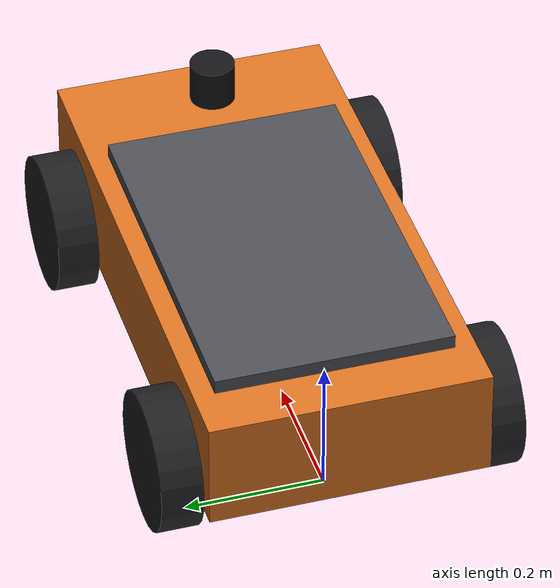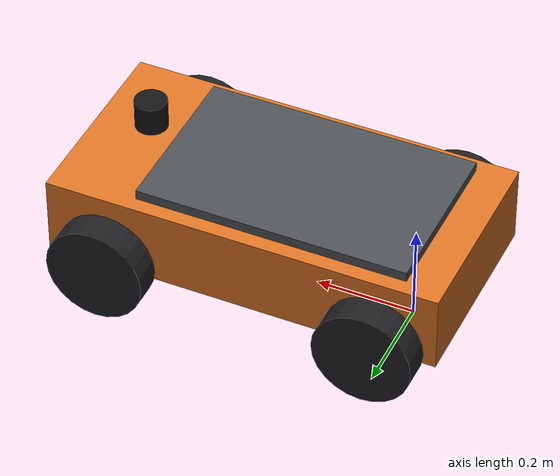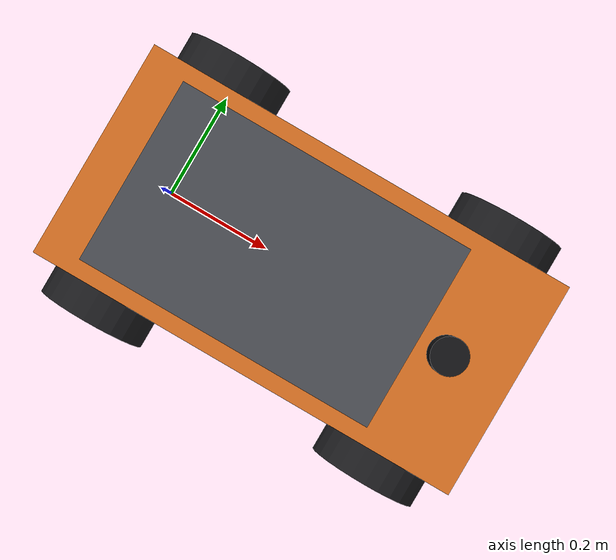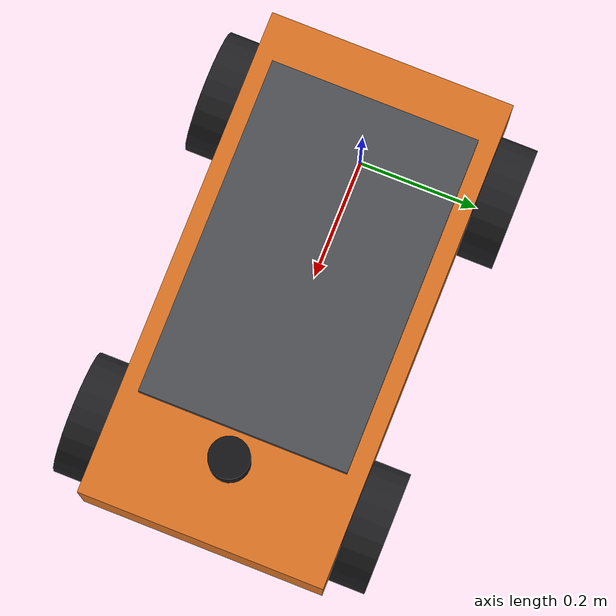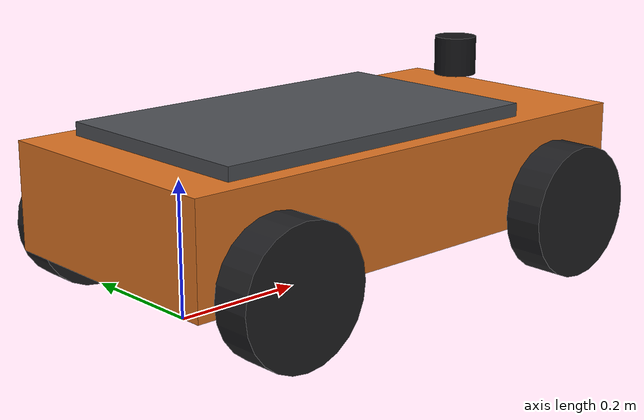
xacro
<?xml version="1.0"?>
<!--
  阿克曼小车：后轮驱动、前轮转向，尺寸约 0.80 x 0.46 m，轴距 0.55 m，最大转角 0.6 rad
  （最小转弯半径约 0.8 m）。和差速车最大的区别：不能原地转向，Nav2 要换成考虑最小转弯半径的
  规划器（Smac Hybrid-A*）和控制器（Regulated Pure Pursuit）。
-->
<robot name="ackermann_car" xmlns:xacro="http://www.ros.org/wiki/xacro">
  <xacro:include filename="$(find robot_nav_sim)/urdf/common.xacro"/>

  <xacro:property name="wheel_r" value="0.10"/>
  <xacro:property name="wheel_w" value="0.06"/>
  <xacro:property name="wheel_base" value="0.55"/>
  <xacro:property name="track" value="0.46"/>
  <xacro:property name="kingpin" value="0.40"/>
  <xacro:property name="steer_limit" value="0.6"/>
  <xacro:property name="body_l" value="0.80"/>
  <xacro:property name="body_w" value="0.40"/>
  <xacro:property name="body_t" value="0.16"/>
  <xacro:property name="body_z" value="${wheel_r + 0.06}"/>
  <!-- base_link 放在后轴中心正上方，和阿克曼运动学的参考点一致 -->
  <xacro:property name="body_cx" value="${wheel_base / 2}"/>

  <material name="car_orange"><color rgba="0.86 0.45 0.14 1"/></material>
  <material name="deck_grey"><color rgba="0.30 0.31 0.33 1"/></material>

  <link name="${root}"/>
  <joint name="base_joint" type="fixed">
    <parent link="${root}"/>
    <child link="${trunk}"/>
    <origin xyz="0 0 ${body_z}" rpy="0 0 0"/>
  </joint>

  <link name="${trunk}">
    <inertial>
      <origin xyz="${body_cx} 0 0"/>
      <mass value="18.0"/>
      <inertia ixx="0.28" ixy="0" ixz="0" iyy="1.0" iyz="0" izz="1.2"/>
    </inertial>
    <visual>
      <origin xyz="${body_cx} 0 0" rpy="0 0 0"/>
      <geometry><box size="${body_l} ${body_w} ${body_t}"/></geometry>
      <material name="car_orange"/>
    </visual>
    <visual>
      <origin xyz="${body_cx - 0.05} 0 ${body_t / 2 + 0.01}" rpy="0 0 0"/>
      <geometry><box size="0.55 0.34 0.02"/></geometry>
      <material name="deck_grey"/>
    </visual>
    <collision>
      <origin xyz="${body_cx} 0 0" rpy="0 0 0"/>
      <geometry><box size="${body_l} ${body_w} ${body_t}"/></geometry>
    </collision>
  </link>

  <!-- 后轮（驱动） -->
  <xacro:drive_wheel name="rear_left_wheel"  parent="${trunk}" xyz="0 ${track / 2} ${wheel_r - body_z}"
                     radius="${wheel_r}" width="${wheel_w}" mass="0.8"/>
  <xacro:drive_wheel name="rear_right_wheel" parent="${trunk}" xyz="0 ${-track / 2} ${wheel_r - body_z}"
                     radius="${wheel_r}" width="${wheel_w}" mass="0.8"/>

  <!-- 前轮：转向节（绕 z 轴）+ 车轮（自由滚动） -->
  <xacro:macro name="steer_wheel" params="side ly">
    <joint name="front_${side}_steer_joint" type="revolute">
      <parent link="${trunk}"/>
      <child link="front_${side}_steer"/>
      <origin xyz="${wheel_base} ${ly * kingpin / 2} ${wheel_r - body_z}" rpy="0 0 0"/>
      <axis xyz="0 0 1"/>
      <limit lower="${-steer_limit}" upper="${steer_limit}" effort="50" velocity="3.0"/>
    </joint>
    <link name="front_${side}_steer">
      <inertial>
        <mass value="0.3"/>
        <inertia ixx="0.0005" ixy="0" ixz="0" iyy="0.0005" iyz="0" izz="0.0005"/>
      </inertial>
    </link>
    <xacro:drive_wheel name="front_${side}_wheel" parent="front_${side}_steer"
                       xyz="0 ${ly * (track - kingpin) / 2} 0" radius="${wheel_r}" width="${wheel_w}" mass="0.8"/>
  </xacro:macro>
  <xacro:steer_wheel side="left" ly="1"/>
  <xacro:steer_wheel side="right" ly="-1"/>

  <!-- Mid-360 装在车顶前部 -->
  <xacro:mid360 parent="${trunk}" xyz="${wheel_base} 0 ${body_t / 2 + 0.085}"/>

  <gazebo>
    <!-- 阿克曼转向：订阅 /robot/cmd_vel（Twist，按 v 和 w 换算前轮转角），发布里程计 -->
    <plugin filename="gz-sim-ackermann-steering-system" name="gz::sim::systems::AckermannSteering">
      <left_joint>rear_left_wheel_joint</left_joint>
      <right_joint>rear_right_wheel_joint</right_joint>
      <left_steering_joint>front_left_steer_joint</left_steering_joint>
      <right_steering_joint>front_right_steer_joint</right_steering_joint>
      <kingpin_width>${kingpin}</kingpin_width>
      <steering_limit>${steer_limit}</steering_limit>
      <wheel_base>${wheel_base}</wheel_base>
      <wheel_separation>${track}</wheel_separation>
      <wheel_radius>${wheel_r}</wheel_radius>
      <min_velocity>-1.0</min_velocity>
      <max_velocity>1.0</max_velocity>
      <min_acceleration>-2.0</min_acceleration>
      <max_acceleration>1.5</max_acceleration>
      <topic>/robot/cmd_vel</topic>
      <odom_topic>/robot/odom</odom_topic>
      <tf_topic>/robot/tf</tf_topic>
      <frame_id>odom</frame_id>
      <child_frame_id>${root}</child_frame_id>
      <odom_publish_frequency>50</odom_publish_frequency>
    </plugin>
  </gazebo>
  <xacro:common_plugins/>
</robot>

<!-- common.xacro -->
<!-- 三台机器人共用的部分：Mid-360 雷达 + IMU、关节状态、仿真真值。话题名对三台机器人都一样。 -->
<robot xmlns:xacro="http://www.ros.org/wiki/xacro">

  <xacro:arg name="root_link" default="base_footprint"/>
  <xacro:arg name="trunk_link" default="base_link"/>
  <xacro:property name="root" value="$(arg root_link)"/>
  <xacro:property name="trunk" value="$(arg trunk_link)"/>

  <material name="lidar_black"><color rgba="0.08 0.08 0.09 1"/></material>

  <!--
    Livox Mid-360 近似模型：gpu_lidar，水平 360°（900 点），垂直 -7°~52°（32 线），10 Hz，测距 0.1~40 m。
    真机是非重复扫描，这里用规则扫描近似；对 2D 导航和 3D 建图练习足够。
    内置 IMU 200 Hz，和雷达同一个坐标系（真机有几厘米偏移，这里忽略）。
  -->
  <xacro:macro name="mid360" params="parent xyz rpy:='0 0 0'">
    <joint name="mid360_joint" type="fixed">
      <parent link="${parent}"/>
      <child link="mid360_link"/>
      <origin xyz="${xyz}" rpy="${rpy}"/>
    </joint>
    <link name="mid360_link">
      <visual>
        <origin xyz="0 0 -0.02" rpy="0 0 0"/>
        <geometry><cylinder radius="0.0325" length="0.06"/></geometry>
        <material name="lidar_black"/>
      </visual>
    </link>
    <gazebo reference="mid360_link">
      <sensor name="mid360" type="gpu_lidar">
        <gz_frame_id>mid360_link</gz_frame_id>
        <topic>/mid360/scan</topic>
        <update_rate>10</update_rate>
        <always_on>true</always_on>
        <visualize>false</visualize>
        <lidar>
          <scan>
            <horizontal>
              <samples>900</samples>
              <resolution>1</resolution>
              <min_angle>-3.14159</min_angle>
              <max_angle>3.14159</max_angle>
            </horizontal>
            <vertical>
              <samples>32</samples>
              <resolution>1</resolution>
              <min_angle>-0.1222</min_angle>
              <max_angle>0.9076</max_angle>
            </vertical>
          </scan>
          <range>
            <min>0.1</min>
            <max>40.0</max>
            <resolution>0.01</resolution>
          </range>
          <noise>
            <type>gaussian</type>
            <mean>0.0</mean>
            <stddev>0.01</stddev>
          </noise>
        </lidar>
      </sensor>
      <sensor name="mid360_imu" type="imu">
        <gz_frame_id>mid360_link</gz_frame_id>
        <topic>/mid360/imu</topic>
        <update_rate>200</update_rate>
        <always_on>true</always_on>
        <imu>
          <angular_velocity>
            <x><noise type="gaussian"><mean>0</mean><stddev>0.002</stddev></noise></x>
            <y><noise type="gaussian"><mean>0</mean><stddev>0.002</stddev></noise></y>
            <z><noise type="gaussian"><mean>0</mean><stddev>0.002</stddev></noise></z>
          </angular_velocity>
          <linear_acceleration>
            <x><noise type="gaussian"><mean>0</mean><stddev>0.02</stddev></noise></x>
            <y><noise type="gaussian"><mean>0</mean><stddev>0.02</stddev></noise></y>
            <z><noise type="gaussian"><mean>0</mean><stddev>0.02</stddev></noise></z>
          </linear_acceleration>
        </imu>
      </sensor>
    </gazebo>
  </xacro:macro>

  <!-- 关节状态 + 仿真真值（3D 位姿，只用于楼层自动识别和评估，导航本身不用） -->
  <xacro:macro name="common_plugins">
    <gazebo>
      <plugin filename="gz-sim-joint-state-publisher-system" name="gz::sim::systems::JointStatePublisher">
        <topic>/robot/joint_states</topic>
      </plugin>
      <plugin filename="gz-sim-odometry-publisher-system" name="gz::sim::systems::OdometryPublisher">
        <odom_frame>world</odom_frame>
        <robot_base_frame>${root}</robot_base_frame>
        <odom_topic>/robot/ground_truth</odom_topic>
        <tf_topic>/robot/ground_truth/tf</tf_topic>
        <dimensions>3</dimensions>
        <odom_publish_frequency>50</odom_publish_frequency>
      </plugin>
    </gazebo>
  </xacro:macro>

  <!-- 差速驱动：订阅 /robot/cmd_vel，发布轮式里程计 odom -> base_footprint -->
  <xacro:macro name="diff_drive_plugin" params="separation radius max_v:=1.0 max_w:=2.0">
    <gazebo>
      <plugin filename="gz-sim-diff-drive-system" name="gz::sim::systems::DiffDrive">
        <left_joint>left_wheel_joint</left_joint>
        <right_joint>right_wheel_joint</right_joint>
        <wheel_separation>${separation}</wheel_separation>
        <wheel_radius>${radius}</wheel_radius>
        <max_linear_acceleration>1.5</max_linear_acceleration>
        <max_angular_acceleration>3.0</max_angular_acceleration>
        <max_linear_velocity>${max_v}</max_linear_velocity>
        <max_angular_velocity>${max_w}</max_angular_velocity>
        <topic>/robot/cmd_vel</topic>
        <odom_topic>/robot/odom</odom_topic>
        <tf_topic>/robot/tf</tf_topic>
        <frame_id>odom</frame_id>
        <child_frame_id>${root}</child_frame_id>
        <odom_publish_frequency>50</odom_publish_frequency>
      </plugin>
    </gazebo>
  </xacro:macro>

  <!-- 四轮滑移转向（Go2 的隐藏底盘用）：四个轮子都驱动，爬坡时前后总有轮子着地 -->
  <xacro:macro name="skid_drive_plugin" params="separation radius max_v:=1.0 max_w:=2.0">
    <gazebo>
      <plugin filename="gz-sim-diff-drive-system" name="gz::sim::systems::DiffDrive">
        <left_joint>front_left_wheel_joint</left_joint>
        <left_joint>rear_left_wheel_joint</left_joint>
        <right_joint>front_right_wheel_joint</right_joint>
        <right_joint>rear_right_wheel_joint</right_joint>
        <wheel_separation>${separation}</wheel_separation>
        <wheel_radius>${radius}</wheel_radius>
        <max_linear_acceleration>1.5</max_linear_acceleration>
        <max_angular_acceleration>3.0</max_angular_acceleration>
        <max_linear_velocity>${max_v}</max_linear_velocity>
        <max_angular_velocity>${max_w}</max_angular_velocity>
        <topic>/robot/cmd_vel</topic>
        <odom_topic>/robot/odom</odom_topic>
        <tf_topic>/robot/tf</tf_topic>
        <frame_id>odom</frame_id>
        <child_frame_id>${root}</child_frame_id>
        <odom_publish_frequency>50</odom_publish_frequency>
      </plugin>
    </gazebo>
  </xacro:macro>

  <!-- 驱动轮：continuous 关节，绕轮轴旋转 -->
  <xacro:macro name="drive_wheel" params="name parent xyz radius width mass:=0.6 visible:=true mu:=1.2">
    <joint name="${name}_joint" type="continuous">
      <parent link="${parent}"/>
      <child link="${name}"/>
      <origin xyz="${xyz}" rpy="-1.5708 0 0"/>
      <axis xyz="0 0 1"/>
      <limit effort="200" velocity="40"/>
    </joint>
    <link name="${name}">
      <inertial>
        <mass value="${mass}"/>
        <inertia ixx="${mass * (3 * radius * radius + width * width) / 12}" ixy="0" ixz="0"
                 iyy="${mass * (3 * radius * radius + width * width) / 12}" iyz="0"
                 izz="${mass * radius * radius / 2}"/>
      </inertial>
      <xacro:if value="${visible}">
        <visual>
          <geometry><cylinder radius="${radius}" length="${width}"/></geometry>
          <material name="tire"><color rgba="0.12 0.12 0.13 1"/></material>
        </visual>
      </xacro:if>
      <collision>
        <geometry><cylinder radius="${radius}" length="${width}"/></geometry>
      </collision>
    </link>
    <gazebo reference="${name}">
      <mu1>${mu}</mu1>
      <mu2>${mu}</mu2>
    </gazebo>
  </xacro:macro>

  <!-- 万向球：零摩擦球体，单独保留成一个 link 以便设置摩擦 -->
  <xacro:macro name="caster" params="name parent xyz radius visible:=false">
    <joint name="${name}_joint" type="fixed">
      <parent link="${parent}"/>
      <child link="${name}"/>
      <origin xyz="${xyz}" rpy="0 0 0"/>
    </joint>
    <link name="${name}">
      <inertial>
        <mass value="0.2"/>
        <inertia ixx="0.0002" ixy="0" ixz="0" iyy="0.0002" iyz="0" izz="0.0002"/>
      </inertial>
      <xacro:if value="${visible}">
        <visual>
          <geometry><sphere radius="${radius}"/></geometry>
          <material name="caster_grey"><color rgba="0.5 0.5 0.52 1"/></material>
        </visual>
      </xacro:if>
      <collision>
        <geometry><sphere radius="${radius}"/></geometry>
      </collision>
    </link>
    <gazebo reference="${name}_joint">
      <preserveFixedJoint>true</preserveFixedJoint>
    </gazebo>
    <gazebo reference="${name}">
      <mu1>0.0</mu1>
      <mu2>0.0</mu2>
    </gazebo>
  </xacro:macro>
</robot>
